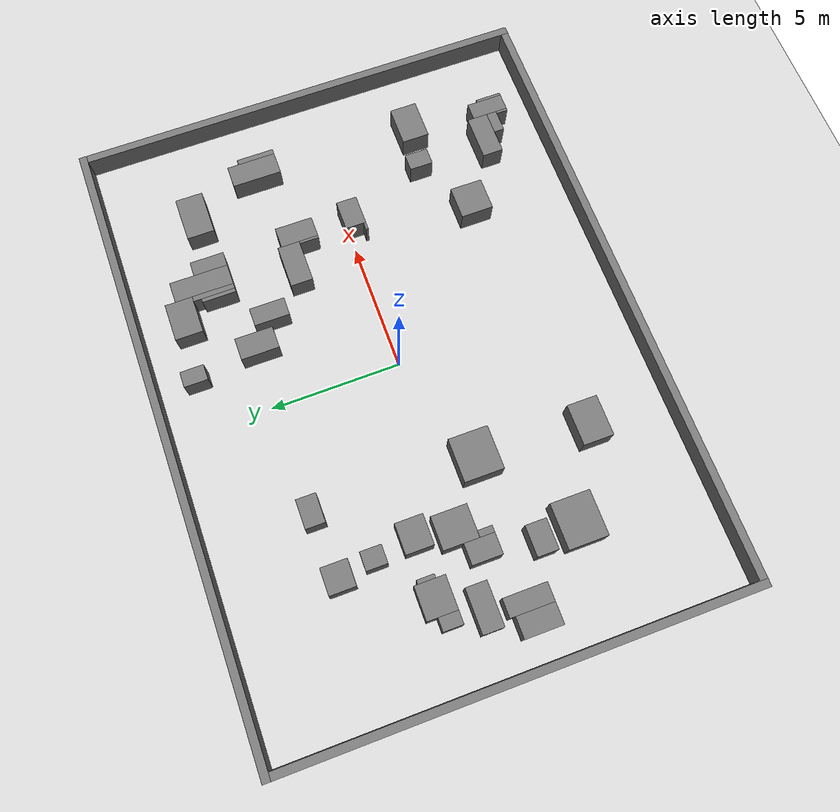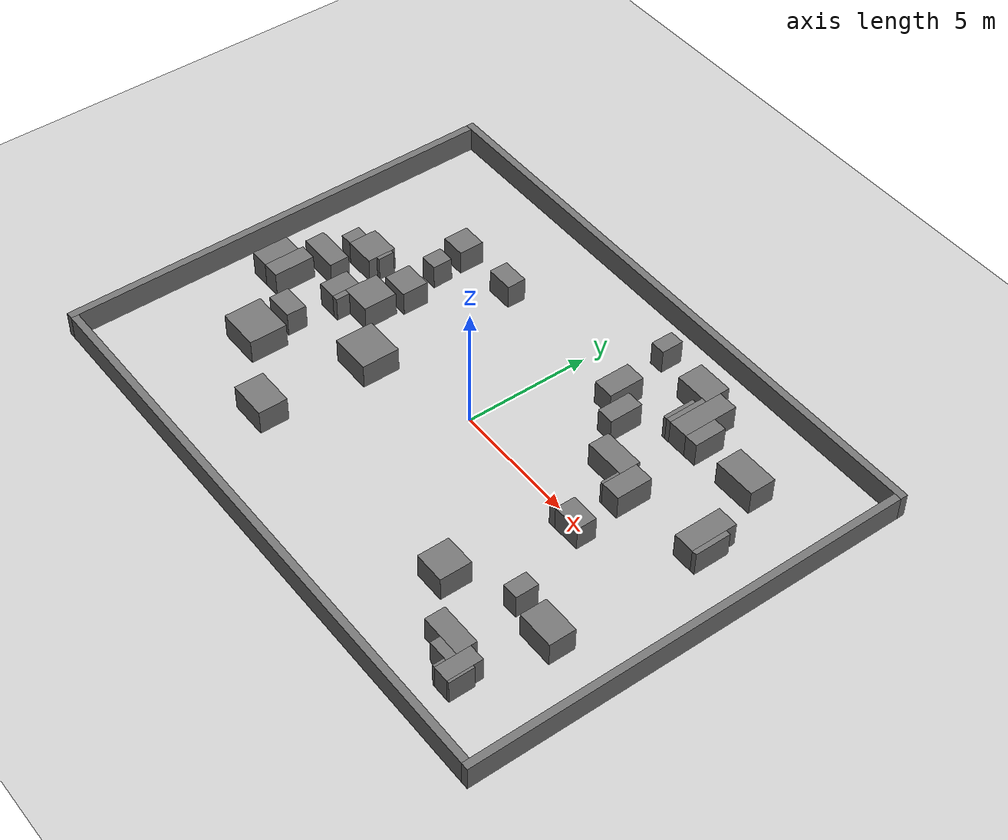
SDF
<sdf version='1.7'>
  <world name='open_clutter_01'>
    <include><uri>model://sun</uri></include>
    <include><uri>model://ground_plane</uri></include>
    <model name='benchmark_obstacles'>
      <static>true</static>
      <link name='obstacles_link'>
        <collision name='obs_0001_collision'>
          <pose>0.000 8.850 0.500 0 0 0</pose>
          <geometry><box><size>24.000 0.300 1.000</size></box></geometry>
          <surface><contact><collide_without_contact>false</collide_without_contact></contact></surface>
        </collision>
        <visual name='obs_0001_visual'>
          <pose>0.000 8.850 0.500 0 0 0</pose>
          <geometry><box><size>24.000 0.300 1.000</size></box></geometry>
          <material>
            <ambient>0.25 0.25 0.25 1</ambient>
            <diffuse>0.45 0.45 0.45 1</diffuse>
            <specular>0.05 0.05 0.05 1</specular>
          </material>
        </visual>
        <collision name='obs_0002_collision'>
          <pose>-11.850 -0.150 0.500 0 0 0</pose>
          <geometry><box><size>0.300 17.700 1.000</size></box></geometry>
          <surface><contact><collide_without_contact>false</collide_without_contact></contact></surface>
        </collision>
        <visual name='obs_0002_visual'>
          <pose>-11.850 -0.150 0.500 0 0 0</pose>
          <geometry><box><size>0.300 17.700 1.000</size></box></geometry>
          <material>
            <ambient>0.25 0.25 0.25 1</ambient>
            <diffuse>0.45 0.45 0.45 1</diffuse>
            <specular>0.05 0.05 0.05 1</specular>
          </material>
        </visual>
        <collision name='obs_0003_collision'>
          <pose>11.850 -0.150 0.500 0 0 0</pose>
          <geometry><box><size>0.300 17.700 1.000</size></box></geometry>
          <surface><contact><collide_without_contact>false</collide_without_contact></contact></surface>
        </collision>
        <visual name='obs_0003_visual'>
          <pose>11.850 -0.150 0.500 0 0 0</pose>
          <geometry><box><size>0.300 17.700 1.000</size></box></geometry>
          <material>
            <ambient>0.25 0.25 0.25 1</ambient>
            <diffuse>0.45 0.45 0.45 1</diffuse>
            <specular>0.05 0.05 0.05 1</specular>
          </material>
        </visual>
        <collision name='obs_0004_collision'>
          <pose>1.850 7.250 0.500 0 0 0</pose>
          <geometry><box><size>0.600 0.900 1.000</size></box></geometry>
          <surface><contact><collide_without_contact>false</collide_without_contact></contact></surface>
        </collision>
        <visual name='obs_0004_visual'>
          <pose>1.850 7.250 0.500 0 0 0</pose>
          <geometry><box><size>0.600 0.900 1.000</size></box></geometry>
          <material>
            <ambient>0.25 0.25 0.25 1</ambient>
            <diffuse>0.45 0.45 0.45 1</diffuse>
            <specular>0.05 0.05 0.05 1</specular>
          </material>
        </visual>
        <collision name='obs_0005_collision'>
          <pose>4.125 6.975 0.500 0 0 0</pose>
          <geometry><box><size>1.450 1.050 1.000</size></box></geometry>
          <surface><contact><collide_without_contact>false</collide_without_contact></contact></surface>
        </collision>
        <visual name='obs_0005_visual'>
          <pose>4.125 6.975 0.500 0 0 0</pose>
          <geometry><box><size>1.450 1.050 1.000</size></box></geometry>
          <material>
            <ambient>0.25 0.25 0.25 1</ambient>
            <diffuse>0.45 0.45 0.45 1</diffuse>
            <specular>0.05 0.05 0.05 1</specular>
          </material>
        </visual>
        <collision name='obs_0006_collision'>
          <pose>5.250 5.975 0.500 0 0 0</pose>
          <geometry><box><size>0.800 2.250 1.000</size></box></geometry>
          <surface><contact><collide_without_contact>false</collide_without_contact></contact></surface>
        </collision>
        <visual name='obs_0006_visual'>
          <pose>5.250 5.975 0.500 0 0 0</pose>
          <geometry><box><size>0.800 2.250 1.000</size></box></geometry>
          <material>
            <ambient>0.25 0.25 0.25 1</ambient>
            <diffuse>0.45 0.45 0.45 1</diffuse>
            <specular>0.05 0.05 0.05 1</specular>
          </material>
        </visual>
        <collision name='obs_0007_collision'>
          <pose>4.750 5.650 0.500 0 0 0</pose>
          <geometry><box><size>0.200 1.600 1.000</size></box></geometry>
          <surface><contact><collide_without_contact>false</collide_without_contact></contact></surface>
        </collision>
        <visual name='obs_0007_visual'>
          <pose>4.750 5.650 0.500 0 0 0</pose>
          <geometry><box><size>0.200 1.600 1.000</size></box></geometry>
          <material>
            <ambient>0.25 0.25 0.25 1</ambient>
            <diffuse>0.45 0.45 0.45 1</diffuse>
            <specular>0.05 0.05 0.05 1</specular>
          </material>
        </visual>
        <collision name='obs_0008_collision'>
          <pose>4.575 5.500 0.500 0 0 0</pose>
          <geometry><box><size>0.150 1.300 1.000</size></box></geometry>
          <surface><contact><collide_without_contact>false</collide_without_contact></contact></surface>
        </collision>
        <visual name='obs_0008_visual'>
          <pose>4.575 5.500 0.500 0 0 0</pose>
          <geometry><box><size>0.150 1.300 1.000</size></box></geometry>
          <material>
            <ambient>0.25 0.25 0.25 1</ambient>
            <diffuse>0.45 0.45 0.45 1</diffuse>
            <specular>0.05 0.05 0.05 1</specular>
          </material>
        </visual>
        <collision name='obs_0009_collision'>
          <pose>5.925 5.500 0.500 0 0 0</pose>
          <geometry><box><size>0.550 1.300 1.000</size></box></geometry>
          <surface><contact><collide_without_contact>false</collide_without_contact></contact></surface>
        </collision>
        <visual name='obs_0009_visual'>
          <pose>5.925 5.500 0.500 0 0 0</pose>
          <geometry><box><size>0.550 1.300 1.000</size></box></geometry>
          <material>
            <ambient>0.25 0.25 0.25 1</ambient>
            <diffuse>0.45 0.45 0.45 1</diffuse>
            <specular>0.05 0.05 0.05 1</specular>
          </material>
        </visual>
        <collision name='obs_0010_collision'>
          <pose>8.050 5.425 0.500 0 0 0</pose>
          <geometry><box><size>1.700 1.050 1.000</size></box></geometry>
          <surface><contact><collide_without_contact>false</collide_without_contact></contact></surface>
        </collision>
        <visual name='obs_0010_visual'>
          <pose>8.050 5.425 0.500 0 0 0</pose>
          <geometry><box><size>1.700 1.050 1.000</size></box></geometry>
          <material>
            <ambient>0.25 0.25 0.25 1</ambient>
            <diffuse>0.45 0.45 0.45 1</diffuse>
            <specular>0.05 0.05 0.05 1</specular>
          </material>
        </visual>
        <collision name='obs_0011_collision'>
          <pose>2.275 4.725 0.500 0 0 0</pose>
          <geometry><box><size>0.850 1.450 1.000</size></box></geometry>
          <surface><contact><collide_without_contact>false</collide_without_contact></contact></surface>
        </collision>
        <visual name='obs_0011_visual'>
          <pose>2.275 4.725 0.500 0 0 0</pose>
          <geometry><box><size>0.850 1.450 1.000</size></box></geometry>
          <material>
            <ambient>0.25 0.25 0.25 1</ambient>
            <diffuse>0.45 0.45 0.45 1</diffuse>
            <specular>0.05 0.05 0.05 1</specular>
          </material>
        </visual>
        <collision name='obs_0012_collision'>
          <pose>-4.250 4.825 0.500 0 0 0</pose>
          <geometry><box><size>1.100 0.750 1.000</size></box></geometry>
          <surface><contact><collide_without_contact>false</collide_without_contact></contact></surface>
        </collision>
        <visual name='obs_0012_visual'>
          <pose>-4.250 4.825 0.500 0 0 0</pose>
          <geometry><box><size>1.100 0.750 1.000</size></box></geometry>
          <material>
            <ambient>0.25 0.25 0.25 1</ambient>
            <diffuse>0.45 0.45 0.45 1</diffuse>
            <specular>0.05 0.05 0.05 1</specular>
          </material>
        </visual>
        <collision name='obs_0013_collision'>
          <pose>-6.700 4.650 0.500 0 0 0</pose>
          <geometry><box><size>1.000 1.000 1.000</size></box></geometry>
          <surface><contact><collide_without_contact>false</collide_without_contact></contact></surface>
        </collision>
        <visual name='obs_0013_visual'>
          <pose>-6.700 4.650 0.500 0 0 0</pose>
          <geometry><box><size>1.000 1.000 1.000</size></box></geometry>
          <material>
            <ambient>0.25 0.25 0.25 1</ambient>
            <diffuse>0.45 0.45 0.45 1</diffuse>
            <specular>0.05 0.05 0.05 1</specular>
          </material>
        </visual>
        <collision name='obs_0014_collision'>
          <pose>3.300 3.925 0.500 0 0 0</pose>
          <geometry><box><size>0.700 1.350 1.000</size></box></geometry>
          <surface><contact><collide_without_contact>false</collide_without_contact></contact></surface>
        </collision>
        <visual name='obs_0014_visual'>
          <pose>3.300 3.925 0.500 0 0 0</pose>
          <geometry><box><size>0.700 1.350 1.000</size></box></geometry>
          <material>
            <ambient>0.25 0.25 0.25 1</ambient>
            <diffuse>0.45 0.45 0.45 1</diffuse>
            <specular>0.05 0.05 0.05 1</specular>
          </material>
        </visual>
        <collision name='obs_0015_collision'>
          <pose>-6.500 3.300 0.500 0 0 0</pose>
          <geometry><box><size>0.700 0.800 1.000</size></box></geometry>
          <surface><contact><collide_without_contact>false</collide_without_contact></contact></surface>
        </collision>
        <visual name='obs_0015_visual'>
          <pose>-6.500 3.300 0.500 0 0 0</pose>
          <geometry><box><size>0.700 0.800 1.000</size></box></geometry>
          <material>
            <ambient>0.25 0.25 0.25 1</ambient>
            <diffuse>0.45 0.45 0.45 1</diffuse>
            <specular>0.05 0.05 0.05 1</specular>
          </material>
        </visual>
        <collision name='obs_0016_collision'>
          <pose>9.175 2.700 0.500 0 0 0</pose>
          <geometry><box><size>0.850 1.900 1.000</size></box></geometry>
          <surface><contact><collide_without_contact>false</collide_without_contact></contact></surface>
        </collision>
        <visual name='obs_0016_visual'>
          <pose>9.175 2.700 0.500 0 0 0</pose>
          <geometry><box><size>0.850 1.900 1.000</size></box></geometry>
          <material>
            <ambient>0.25 0.25 0.25 1</ambient>
            <diffuse>0.45 0.45 0.45 1</diffuse>
            <specular>0.05 0.05 0.05 1</specular>
          </material>
        </visual>
        <collision name='obs_0017_collision'>
          <pose>9.700 2.475 0.500 0 0 0</pose>
          <geometry><box><size>0.200 1.450 1.000</size></box></geometry>
          <surface><contact><collide_without_contact>false</collide_without_contact></contact></surface>
        </collision>
        <visual name='obs_0017_visual'>
          <pose>9.700 2.475 0.500 0 0 0</pose>
          <geometry><box><size>0.200 1.450 1.000</size></box></geometry>
          <material>
            <ambient>0.25 0.25 0.25 1</ambient>
            <diffuse>0.45 0.45 0.45 1</diffuse>
            <specular>0.05 0.05 0.05 1</specular>
          </material>
        </visual>
        <collision name='obs_0018_collision'>
          <pose>4.825 2.425 0.500 0 0 0</pose>
          <geometry><box><size>1.650 0.850 1.000</size></box></geometry>
          <surface><contact><collide_without_contact>false</collide_without_contact></contact></surface>
        </collision>
        <visual name='obs_0018_visual'>
          <pose>4.825 2.425 0.500 0 0 0</pose>
          <geometry><box><size>1.650 0.850 1.000</size></box></geometry>
          <material>
            <ambient>0.25 0.25 0.25 1</ambient>
            <diffuse>0.45 0.45 0.45 1</diffuse>
            <specular>0.05 0.05 0.05 1</specular>
          </material>
        </visual>
        <collision name='obs_0019_collision'>
          <pose>6.050 1.975 0.500 0 0 0</pose>
          <geometry><box><size>0.800 1.450 1.000</size></box></geometry>
          <surface><contact><collide_without_contact>false</collide_without_contact></contact></surface>
        </collision>
        <visual name='obs_0019_visual'>
          <pose>6.050 1.975 0.500 0 0 0</pose>
          <geometry><box><size>0.800 1.450 1.000</size></box></geometry>
          <material>
            <ambient>0.25 0.25 0.25 1</ambient>
            <diffuse>0.45 0.45 0.45 1</diffuse>
            <specular>0.05 0.05 0.05 1</specular>
          </material>
        </visual>
        <collision name='obs_0020_collision'>
          <pose>-8.475 1.775 0.500 0 0 0</pose>
          <geometry><box><size>1.250 1.150 1.000</size></box></geometry>
          <surface><contact><collide_without_contact>false</collide_without_contact></contact></surface>
        </collision>
        <visual name='obs_0020_visual'>
          <pose>-8.475 1.775 0.500 0 0 0</pose>
          <geometry><box><size>1.250 1.150 1.000</size></box></geometry>
          <material>
            <ambient>0.25 0.25 0.25 1</ambient>
            <diffuse>0.45 0.45 0.45 1</diffuse>
            <specular>0.05 0.05 0.05 1</specular>
          </material>
        </visual>
        <collision name='obs_0021_collision'>
          <pose>-6.225 1.725 0.500 0 0 0</pose>
          <geometry><box><size>1.150 1.050 1.000</size></box></geometry>
          <surface><contact><collide_without_contact>false</collide_without_contact></contact></surface>
        </collision>
        <visual name='obs_0021_visual'>
          <pose>-6.225 1.725 0.500 0 0 0</pose>
          <geometry><box><size>1.150 1.050 1.000</size></box></geometry>
          <material>
            <ambient>0.25 0.25 0.25 1</ambient>
            <diffuse>0.45 0.45 0.45 1</diffuse>
            <specular>0.05 0.05 0.05 1</specular>
          </material>
        </visual>
        <collision name='obs_0022_collision'>
          <pose>-7.775 1.875 0.500 0 0 0</pose>
          <geometry><box><size>0.150 0.650 1.000</size></box></geometry>
          <surface><contact><collide_without_contact>false</collide_without_contact></contact></surface>
        </collision>
        <visual name='obs_0022_visual'>
          <pose>-7.775 1.875 0.500 0 0 0</pose>
          <geometry><box><size>0.150 0.650 1.000</size></box></geometry>
          <material>
            <ambient>0.25 0.25 0.25 1</ambient>
            <diffuse>0.45 0.45 0.45 1</diffuse>
            <specular>0.05 0.05 0.05 1</specular>
          </material>
        </visual>
        <collision name='obs_0023_collision'>
          <pose>5.600 1.625 0.500 0 0 0</pose>
          <geometry><box><size>0.100 0.750 1.000</size></box></geometry>
          <surface><contact><collide_without_contact>false</collide_without_contact></contact></surface>
        </collision>
        <visual name='obs_0023_visual'>
          <pose>5.600 1.625 0.500 0 0 0</pose>
          <geometry><box><size>0.100 0.750 1.000</size></box></geometry>
          <material>
            <ambient>0.25 0.25 0.25 1</ambient>
            <diffuse>0.45 0.45 0.45 1</diffuse>
            <specular>0.05 0.05 0.05 1</specular>
          </material>
        </visual>
        <collision name='obs_0024_collision'>
          <pose>-9.350 1.575 0.500 0 0 0</pose>
          <geometry><box><size>0.500 0.750 1.000</size></box></geometry>
          <surface><contact><collide_without_contact>false</collide_without_contact></contact></surface>
        </collision>
        <visual name='obs_0024_visual'>
          <pose>-9.350 1.575 0.500 0 0 0</pose>
          <geometry><box><size>0.500 0.750 1.000</size></box></geometry>
          <material>
            <ambient>0.25 0.25 0.25 1</ambient>
            <diffuse>0.45 0.45 0.45 1</diffuse>
            <specular>0.05 0.05 0.05 1</specular>
          </material>
        </visual>
        <collision name='obs_0025_collision'>
          <pose>-6.475 0.325 0.500 0 0 0</pose>
          <geometry><box><size>1.250 1.350 1.000</size></box></geometry>
          <surface><contact><collide_without_contact>false</collide_without_contact></contact></surface>
        </collision>
        <visual name='obs_0025_visual'>
          <pose>-6.475 0.325 0.500 0 0 0</pose>
          <geometry><box><size>1.250 1.350 1.000</size></box></geometry>
          <material>
            <ambient>0.25 0.25 0.25 1</ambient>
            <diffuse>0.45 0.45 0.45 1</diffuse>
            <specular>0.05 0.05 0.05 1</specular>
          </material>
        </visual>
        <collision name='obs_0026_collision'>
          <pose>-9.325 0.350 0.500 0 0 0</pose>
          <geometry><box><size>1.650 0.800 1.000</size></box></geometry>
          <surface><contact><collide_without_contact>false</collide_without_contact></contact></surface>
        </collision>
        <visual name='obs_0026_visual'>
          <pose>-9.325 0.350 0.500 0 0 0</pose>
          <geometry><box><size>1.650 0.800 1.000</size></box></geometry>
          <material>
            <ambient>0.25 0.25 0.25 1</ambient>
            <diffuse>0.45 0.45 0.45 1</diffuse>
            <specular>0.05 0.05 0.05 1</specular>
          </material>
        </visual>
        <collision name='obs_0027_collision'>
          <pose>-7.500 -0.325 0.500 0 0 0</pose>
          <geometry><box><size>0.800 1.150 1.000</size></box></geometry>
          <surface><contact><collide_without_contact>false</collide_without_contact></contact></surface>
        </collision>
        <visual name='obs_0027_visual'>
          <pose>-7.500 -0.325 0.500 0 0 0</pose>
          <geometry><box><size>0.800 1.150 1.000</size></box></geometry>
          <material>
            <ambient>0.25 0.25 0.25 1</ambient>
            <diffuse>0.45 0.45 0.45 1</diffuse>
            <specular>0.05 0.05 0.05 1</specular>
          </material>
        </visual>
        <collision name='obs_0028_collision'>
          <pose>6.125 -0.250 0.500 0 0 0</pose>
          <geometry><box><size>1.150 0.800 1.000</size></box></geometry>
          <surface><contact><collide_without_contact>false</collide_without_contact></contact></surface>
        </collision>
        <visual name='obs_0028_visual'>
          <pose>6.125 -0.250 0.500 0 0 0</pose>
          <geometry><box><size>1.150 0.800 1.000</size></box></geometry>
          <material>
            <ambient>0.25 0.25 0.25 1</ambient>
            <diffuse>0.45 0.45 0.45 1</diffuse>
            <specular>0.05 0.05 0.05 1</specular>
          </material>
        </visual>
        <collision name='obs_0029_collision'>
          <pose>-9.600 -1.125 0.500 0 0 0</pose>
          <geometry><box><size>0.700 1.650 1.000</size></box></geometry>
          <surface><contact><collide_without_contact>false</collide_without_contact></contact></surface>
        </collision>
        <visual name='obs_0029_visual'>
          <pose>-9.600 -1.125 0.500 0 0 0</pose>
          <geometry><box><size>0.700 1.650 1.000</size></box></geometry>
          <material>
            <ambient>0.25 0.25 0.25 1</ambient>
            <diffuse>0.45 0.45 0.45 1</diffuse>
            <specular>0.05 0.05 0.05 1</specular>
          </material>
        </visual>
        <collision name='obs_0030_collision'>
          <pose>-6.975 -0.625 0.500 0 0 0</pose>
          <geometry><box><size>0.250 0.550 1.000</size></box></geometry>
          <surface><contact><collide_without_contact>false</collide_without_contact></contact></surface>
        </collision>
        <visual name='obs_0030_visual'>
          <pose>-6.975 -0.625 0.500 0 0 0</pose>
          <geometry><box><size>0.250 0.550 1.000</size></box></geometry>
          <material>
            <ambient>0.25 0.25 0.25 1</ambient>
            <diffuse>0.45 0.45 0.45 1</diffuse>
            <specular>0.05 0.05 0.05 1</specular>
          </material>
        </visual>
        <collision name='obs_0031_collision'>
          <pose>-10.350 -1.225 0.500 0 0 0</pose>
          <geometry><box><size>0.800 1.450 1.000</size></box></geometry>
          <surface><contact><collide_without_contact>false</collide_without_contact></contact></surface>
        </collision>
        <visual name='obs_0031_visual'>
          <pose>-10.350 -1.225 0.500 0 0 0</pose>
          <geometry><box><size>0.800 1.450 1.000</size></box></geometry>
          <material>
            <ambient>0.25 0.25 0.25 1</ambient>
            <diffuse>0.45 0.45 0.45 1</diffuse>
            <specular>0.05 0.05 0.05 1</specular>
          </material>
        </visual>
        <collision name='obs_0032_collision'>
          <pose>-4.325 -1.300 0.500 0 0 0</pose>
          <geometry><box><size>1.650 1.500 1.000</size></box></geometry>
          <surface><contact><collide_without_contact>false</collide_without_contact></contact></surface>
        </collision>
        <visual name='obs_0032_visual'>
          <pose>-4.325 -1.300 0.500 0 0 0</pose>
          <geometry><box><size>1.650 1.500 1.000</size></box></geometry>
          <material>
            <ambient>0.25 0.25 0.25 1</ambient>
            <diffuse>0.45 0.45 0.45 1</diffuse>
            <specular>0.05 0.05 0.05 1</specular>
          </material>
        </visual>
        <collision name='obs_0033_collision'>
          <pose>5.400 -0.600 0.500 0 0 0</pose>
          <geometry><box><size>0.300 0.100 1.000</size></box></geometry>
          <surface><contact><collide_without_contact>false</collide_without_contact></contact></surface>
        </collision>
        <visual name='obs_0033_visual'>
          <pose>5.400 -0.600 0.500 0 0 0</pose>
          <geometry><box><size>0.300 0.100 1.000</size></box></geometry>
          <material>
            <ambient>0.25 0.25 0.25 1</ambient>
            <diffuse>0.45 0.45 0.45 1</diffuse>
            <specular>0.05 0.05 0.05 1</specular>
          </material>
        </visual>
        <collision name='obs_0034_collision'>
          <pose>-7.825 -2.350 0.500 0 0 0</pose>
          <geometry><box><size>1.150 0.800 1.000</size></box></geometry>
          <surface><contact><collide_without_contact>false</collide_without_contact></contact></surface>
        </collision>
        <visual name='obs_0034_visual'>
          <pose>-7.825 -2.350 0.500 0 0 0</pose>
          <geometry><box><size>1.150 0.800 1.000</size></box></geometry>
          <material>
            <ambient>0.25 0.25 0.25 1</ambient>
            <diffuse>0.45 0.45 0.45 1</diffuse>
            <specular>0.05 0.05 0.05 1</specular>
          </material>
        </visual>
        <collision name='obs_0035_collision'>
          <pose>-7.700 -3.800 0.500 0 0 0</pose>
          <geometry><box><size>1.700 1.500 1.000</size></box></geometry>
          <surface><contact><collide_without_contact>false</collide_without_contact></contact></surface>
        </collision>
        <visual name='obs_0035_visual'>
          <pose>-7.700 -3.800 0.500 0 0 0</pose>
          <geometry><box><size>1.700 1.500 1.000</size></box></geometry>
          <material>
            <ambient>0.25 0.25 0.25 1</ambient>
            <diffuse>0.45 0.45 0.45 1</diffuse>
            <specular>0.05 0.05 0.05 1</specular>
          </material>
        </visual>
        <collision name='obs_0036_collision'>
          <pose>7.425 -3.500 0.500 0 0 0</pose>
          <geometry><box><size>0.650 0.900 1.000</size></box></geometry>
          <surface><contact><collide_without_contact>false</collide_without_contact></contact></surface>
        </collision>
        <visual name='obs_0036_visual'>
          <pose>7.425 -3.500 0.500 0 0 0</pose>
          <geometry><box><size>0.650 0.900 1.000</size></box></geometry>
          <material>
            <ambient>0.25 0.25 0.25 1</ambient>
            <diffuse>0.45 0.45 0.45 1</diffuse>
            <specular>0.05 0.05 0.05 1</specular>
          </material>
        </visual>
        <collision name='obs_0037_collision'>
          <pose>9.100 -3.725 0.500 0 0 0</pose>
          <geometry><box><size>1.500 1.050 1.000</size></box></geometry>
          <surface><contact><collide_without_contact>false</collide_without_contact></contact></surface>
        </collision>
        <visual name='obs_0037_visual'>
          <pose>9.100 -3.725 0.500 0 0 0</pose>
          <geometry><box><size>1.500 1.050 1.000</size></box></geometry>
          <material>
            <ambient>0.25 0.25 0.25 1</ambient>
            <diffuse>0.45 0.45 0.45 1</diffuse>
            <specular>0.05 0.05 0.05 1</specular>
          </material>
        </visual>
        <collision name='obs_0038_collision'>
          <pose>5.125 -4.825 0.500 0 0 0</pose>
          <geometry><box><size>1.250 1.250 1.000</size></box></geometry>
          <surface><contact><collide_without_contact>false</collide_without_contact></contact></surface>
        </collision>
        <visual name='obs_0038_visual'>
          <pose>5.125 -4.825 0.500 0 0 0</pose>
          <geometry><box><size>1.250 1.250 1.000</size></box></geometry>
          <material>
            <ambient>0.25 0.25 0.25 1</ambient>
            <diffuse>0.45 0.45 0.45 1</diffuse>
            <specular>0.05 0.05 0.05 1</specular>
          </material>
        </visual>
        <collision name='obs_0039_collision'>
          <pose>-4.575 -5.575 0.500 0 0 0</pose>
          <geometry><box><size>1.550 1.150 1.000</size></box></geometry>
          <surface><contact><collide_without_contact>false</collide_without_contact></contact></surface>
        </collision>
        <visual name='obs_0039_visual'>
          <pose>-4.575 -5.575 0.500 0 0 0</pose>
          <geometry><box><size>1.550 1.150 1.000</size></box></geometry>
          <material>
            <ambient>0.25 0.25 0.25 1</ambient>
            <diffuse>0.45 0.45 0.45 1</diffuse>
            <specular>0.05 0.05 0.05 1</specular>
          </material>
        </visual>
        <collision name='obs_0040_collision'>
          <pose>7.550 -6.350 0.500 0 0 0</pose>
          <geometry><box><size>1.700 0.800 1.000</size></box></geometry>
          <surface><contact><collide_without_contact>false</collide_without_contact></contact></surface>
        </collision>
        <visual name='obs_0040_visual'>
          <pose>7.550 -6.350 0.500 0 0 0</pose>
          <geometry><box><size>1.700 0.800 1.000</size></box></geometry>
          <material>
            <ambient>0.25 0.25 0.25 1</ambient>
            <diffuse>0.45 0.45 0.45 1</diffuse>
            <specular>0.05 0.05 0.05 1</specular>
          </material>
        </visual>
        <collision name='obs_0041_collision'>
          <pose>8.725 -6.900 0.500 0 0 0</pose>
          <geometry><box><size>0.650 1.400 1.000</size></box></geometry>
          <surface><contact><collide_without_contact>false</collide_without_contact></contact></surface>
        </collision>
        <visual name='obs_0041_visual'>
          <pose>8.725 -6.900 0.500 0 0 0</pose>
          <geometry><box><size>0.650 1.400 1.000</size></box></geometry>
          <material>
            <ambient>0.25 0.25 0.25 1</ambient>
            <diffuse>0.45 0.45 0.45 1</diffuse>
            <specular>0.05 0.05 0.05 1</specular>
          </material>
        </visual>
        <collision name='obs_0042_collision'>
          <pose>9.100 -7.100 0.500 0 0 0</pose>
          <geometry><box><size>0.100 1.000 1.000</size></box></geometry>
          <surface><contact><collide_without_contact>false</collide_without_contact></contact></surface>
        </collision>
        <visual name='obs_0042_visual'>
          <pose>9.100 -7.100 0.500 0 0 0</pose>
          <geometry><box><size>0.100 1.000 1.000</size></box></geometry>
          <material>
            <ambient>0.25 0.25 0.25 1</ambient>
            <diffuse>0.45 0.45 0.45 1</diffuse>
            <specular>0.05 0.05 0.05 1</specular>
          </material>
        </visual>
        <collision name='obs_0043_collision'>
          <pose>7.975 -6.950 0.500 0 0 0</pose>
          <geometry><box><size>0.850 0.400 1.000</size></box></geometry>
          <surface><contact><collide_without_contact>false</collide_without_contact></contact></surface>
        </collision>
        <visual name='obs_0043_visual'>
          <pose>7.975 -6.950 0.500 0 0 0</pose>
          <geometry><box><size>0.850 0.400 1.000</size></box></geometry>
          <material>
            <ambient>0.25 0.25 0.25 1</ambient>
            <diffuse>0.45 0.45 0.45 1</diffuse>
            <specular>0.05 0.05 0.05 1</specular>
          </material>
        </visual>
        <collision name='obs_0044_collision'>
          <pose>8.350 -7.375 0.500 0 0 0</pose>
          <geometry><box><size>0.100 0.450 1.000</size></box></geometry>
          <surface><contact><collide_without_contact>false</collide_without_contact></contact></surface>
        </collision>
        <visual name='obs_0044_visual'>
          <pose>8.350 -7.375 0.500 0 0 0</pose>
          <geometry><box><size>0.100 0.450 1.000</size></box></geometry>
          <material>
            <ambient>0.25 0.25 0.25 1</ambient>
            <diffuse>0.45 0.45 0.45 1</diffuse>
            <specular>0.05 0.05 0.05 1</specular>
          </material>
        </visual>
        <collision name='obs_0045_collision'>
          <pose>0.000 -8.850 0.500 0 0 0</pose>
          <geometry><box><size>23.400 0.300 1.000</size></box></geometry>
          <surface><contact><collide_without_contact>false</collide_without_contact></contact></surface>
        </collision>
        <visual name='obs_0045_visual'>
          <pose>0.000 -8.850 0.500 0 0 0</pose>
          <geometry><box><size>23.400 0.300 1.000</size></box></geometry>
          <material>
            <ambient>0.25 0.25 0.25 1</ambient>
            <diffuse>0.45 0.45 0.45 1</diffuse>
            <specular>0.05 0.05 0.05 1</specular>
          </material>
        </visual>
      </link>
    </model>
  </world>
</sdf>
